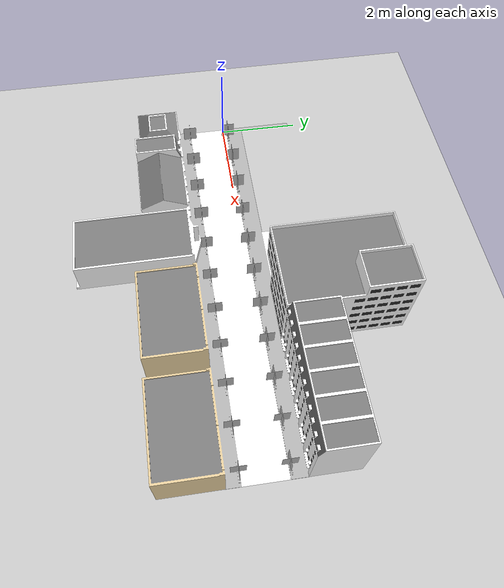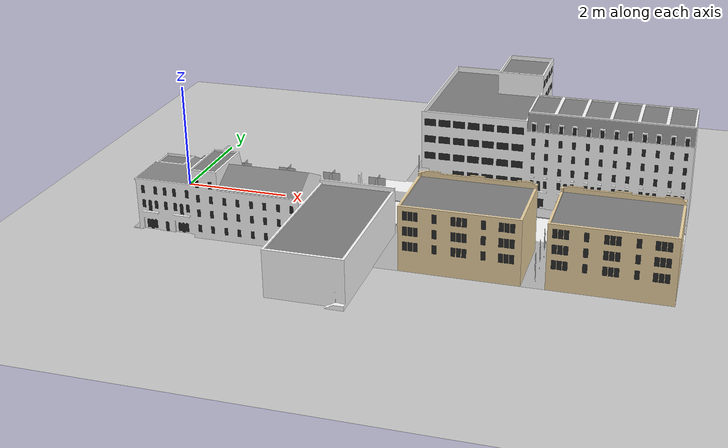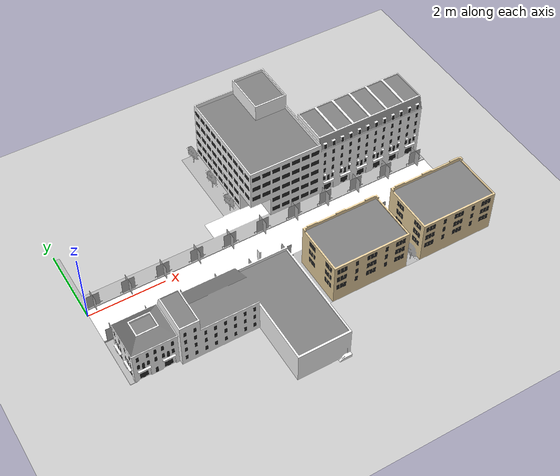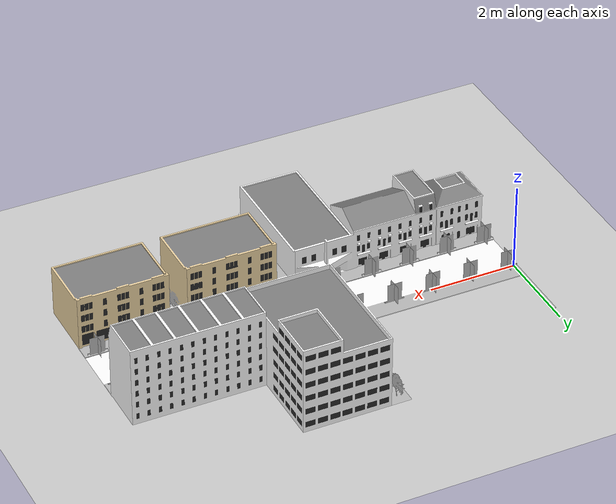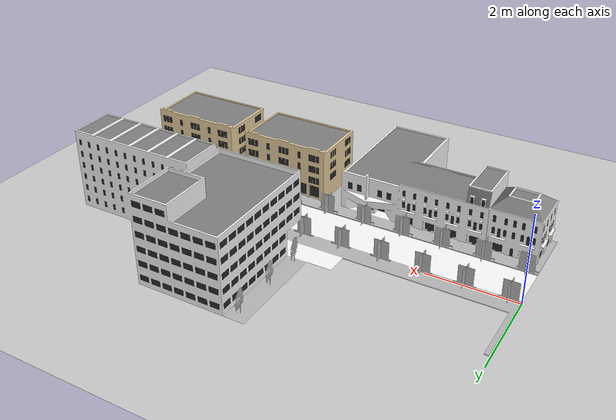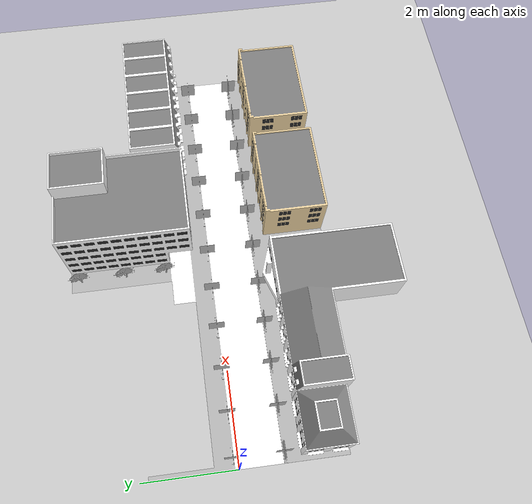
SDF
<sdf version='1.4'>
  <world name='city1_world'>
    <!-- A global light source -->
    <include>
      <uri>model://sun</uri>
    </include>

    <!-- A ground plane -->
    <include>
      <uri>model://ground_plane</uri>
    </include>

    <physics type="ode">
      <real_time_update_rate>1000.0</real_time_update_rate>
      <max_step_size>0.001</max_step_size>
      <real_time_factor>1</real_time_factor>
      <ode>
        <solver>
          <type>quick</type>
          <iters>150</iters>
          <precon_iters>0</precon_iters>
          <sor>1.400000</sor>
          <use_dynamic_moi_rescaling>1</use_dynamic_moi_rescaling>
        </solver>
        <constraints>
          <cfm>0.00001</cfm>
          <erp>0.2</erp>
          <contact_max_correcting_vel>2000.000000</contact_max_correcting_vel>
          <contact_surface_layer>0.01000</contact_surface_layer>
        </constraints>
      </ode>
    </physics>

    <!-- A turtlebot symbol -->

    <include>
      <name>city1_in_world</name>
      <pose>0.0 0.0 0.1 0 0 -1.5708</pose>
      <uri>model://city1</uri>
    </include>

    <scene>
      <ambient>0.4 0.4 0.4 1</ambient>
      <background>0.7 0.7 0.7 1</background>
      <shadows>true</shadows>
      <sky>
        <clouds>
        <speed>0</speed>
        </clouds>
      </sky>
    </scene>

    <gui fullscreen='0'>
      <camera name='user_camera'>
        <pose>0.0 0.0 17.0 0 1.5708 0</pose>
        <view_controller>orbit</view_controller>
      </camera>
    </gui>
  </world>
</sdf>

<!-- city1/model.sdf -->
<sdf version='1.7'>
  <model name='city1'>
	<static>true</static>
    <link name='link_0'>

		<collision name="collision">
		<geometry>
			<mesh>
				<uri>model://city1/mesh/model.dae</uri>
				<scale>0.00 0.00 0.00</scale>
			</mesh>
		</geometry>
		</collision>

		<visual name="visual">
		<cast_shadows>true</cast_shadows>
		<geometry>
			<mesh>
				<uri>model://city1/mesh/model.dae</uri>
				<scale>0.09 0.09 0.09</scale>
			</mesh>
		</geometry>
		</visual>
    </link>
  </model>
</sdf>
